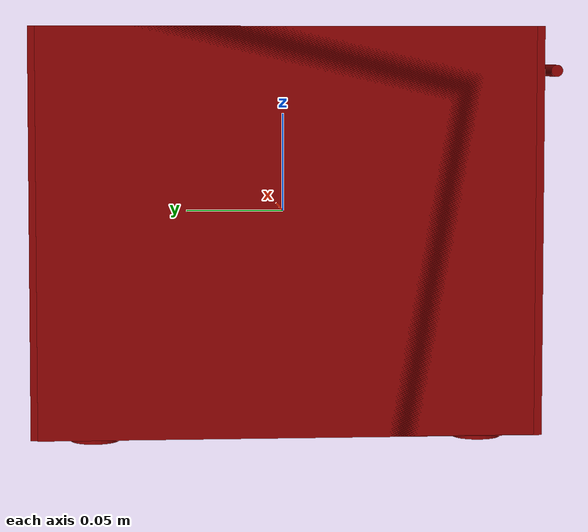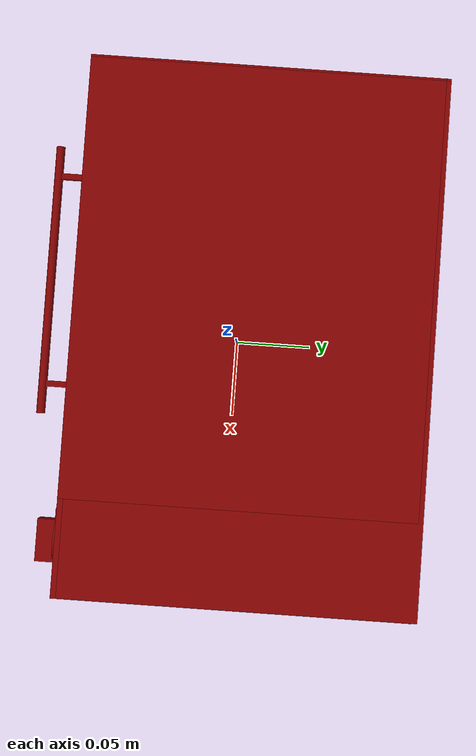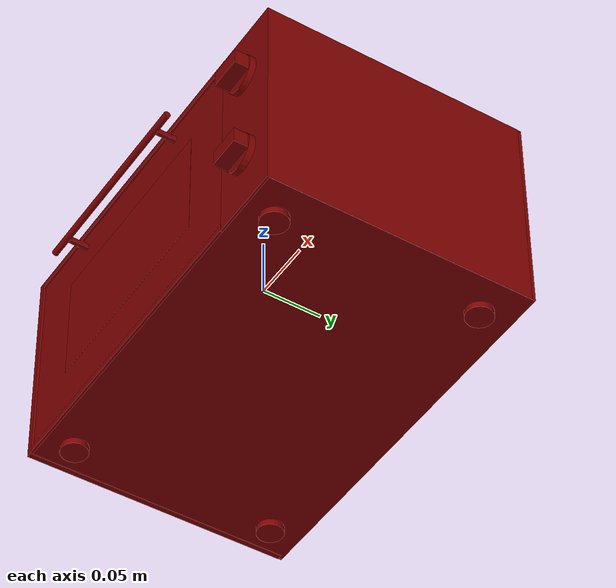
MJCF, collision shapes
<?xml version='1.0' encoding='UTF-8'?>
<mujoco model="model">
  <option timestep="0.002" gravity="0.0 0.0 -9.81"/>
  <compiler angle="radian"/>
  <asset>
    <mesh file="visuals/door.obj" name="door_vis"/>
    <mesh file="visuals/knob_temp.obj" name="knob_temp_vis"/>
    <mesh file="visuals/knob_time.obj" name="knob_time_vis"/>
    <mesh file="visuals/rack0.obj" name="rack0_vis"/>
    <mesh file="visuals/Body001.obj" name="Body001_vis"/>
    <mesh file="visuals/window.obj" name="window_vis"/>
    <texture file="visuals/T_BC001.png" name="Body001_material" type="2d"/>
    <material name="Body001_material" rgba="1 1 1 1.0" texture="Body001_material" shininess="0.4472135901451111" specular="0.5"/>
    <texture file="visuals/T_BC001.png" name="door_material" type="2d"/>
    <material name="door_material" rgba="1 1 1 1.0" texture="door_material" shininess="0.4472135901451111" specular="0.5"/>
    <material name="window_material" rgba="0.04862835258245468 0.04862835258245468 0.04862835258245468 0.699999988079071" shininess="0.4472135901451111" specular="0.3103448502657381"/>
    <texture file="visuals/T_BC001.png" name="knob_temp_material" type="2d"/>
    <material name="knob_temp_material" rgba="1 1 1 1.0" texture="knob_temp_material" shininess="0.4472135901451111" specular="0.3103448502657381"/>
    <texture file="visuals/T_BC001.png" name="knob_time_material" type="2d"/>
    <material name="knob_time_material" rgba="1 1 1 1.0" texture="knob_time_material" shininess="0.4472135901451111" specular="0.3103448502657381"/>
    <texture file="visuals/T_BC001.png" name="rack0_material" type="2d"/>
    <material name="rack0_material" rgba="1 1 1 1.0" texture="rack0_material" shininess="0.4472135901451111" specular="5"/>
  </asset>
  <default>
    <default class="visual">
      <geom conaffinity="0" contype="0" group="1" type="mesh"/>
    </default>
    <default class="collision">
      <geom group="0" rgba="0.5 0 0 0.5"/>
    </default>
    <default class="spawn">
      <geom group="0" rgba="1 1 1 0.5" contype="0" conaffinity="0"/>
      <site group="0" rgba="1 1 1 0.5"/>
    </default>
    <default class="region">
      <geom group="1" conaffinity="0" contype="0" rgba="0 1 0 0"/>
    </default>
  </default>
  <worldbody>
    <body>
      <body name="object">
        <geom mesh="Body001_vis" type="mesh" solimp="0.998 0.998 0.001" solref="0.001 1" friction="0.95 0.3 0.1" class="visual" material="Body001_material"/>
        <geom class="collision" type="box" pos="0.0005172229721210897 0.011733900755643845 0.08691734820604324" size="0.16827885806560516 0.11101721227169037 0.0059806848876178265" quat="1.0 0.0 0.0 0.0"/>
        <geom class="collision" type="box" pos="0.0005172229721210897 0.010909182950854301 -0.08161424100399017" size="0.16827930510044098 0.11184202879667282 0.00614984892308712" quat="1.0 0.0 0.0 0.0"/>
        <geom class="collision" type="box" pos="-0.16227222979068756 0.011733354069292545 0.00258427020162344" size="0.006781758740544319 0.11101708561182022 0.09031245857477188" quat="1.0 0.0 0.0 0.0"/>
        <geom class="collision" type="box" pos="0.0005172229721210897 0.11658301204442978 0.002612464129924774" size="0.16828016936779022 0.006169528234750032 0.08218147605657578" quat="1.0 0.0 0.0 0.0"/>
        <geom class="collision" type="box" pos="0.13432499766349792 0.011733589693903923 0.001870125182904303" size="0.03472871333360672 0.11101776361465454 0.08959874510765076" quat="1.0 0.0 0.0 0.0"/>
        <geom class="collision" type="box" pos="0.10413810610771179 0.011733400635421276 -0.007304775528609753" size="0.00981364119797945 0.11101780086755753 0.00942976027727127" quat="1.0 0.0 0.0 0.0"/>
        <geom class="collision" type="box" pos="0.10373619198799133 0.011733400635421276 -0.030886605381965637" size="0.009176552295684814 0.11101800203323364 0.009429773315787315" quat="1.0 0.0 0.0 0.0"/>
        <geom class="collision" type="box" pos="0.10413810610771179 0.011733400635421276 0.0160503052175045" size="0.009813695214688778 0.11101823300123215 0.009429787285625935" quat="1.0 0.0 0.0 0.0"/>
        <geom class="collision" type="box" pos="0.10413810610771179 0.011733400635421276 0.03679776191711426" size="0.009813722223043442 0.11101843416690826 0.007048959843814373" quat="1.0 0.0 0.0 0.0"/>
        <geom class="collision" type="box" pos="-0.159526064991951 0.01173335313796997 0.03679777681827545" size="0.008752756752073765 0.11101861298084259 0.007048957049846649" quat="1.0 0.0 0.0 0.0"/>
        <geom class="collision" type="box" pos="-0.159526064991951 0.01173335313796997 0.0160503052175045" size="0.00875276979058981 0.1110188215970993 0.009429827332496643" quat="1.0 0.0 0.0 0.0"/>
        <geom class="collision" type="box" pos="-0.15914511680603027 0.01173335313796997 -0.030886605381965637" size="0.008115433156490326 0.11101904511451721 0.009429841302335262" quat="1.0 0.0 0.0 0.0"/>
        <geom class="collision" type="box" pos="-0.159526064991951 0.01173335313796997 -0.007304775528609753" size="0.008752796798944473 0.11101925373077393 0.009429854340851307" quat="1.0 0.0 0.0 0.0"/>
        <geom class="collision" type="cylinder" pos="-0.14149688184261322 -0.0778157040476799 -0.08931057900190353" size="0.011068589985370636 0.0035875211469829082" quat="1.0 0.0 0.0 0.0"/>
        <geom class="collision" type="cylinder" pos="0.13824091851711273 -0.0778157040476799 -0.08931057900190353" size="0.011068589985370636 0.0035875211469829082" quat="1.0 0.0 0.0 0.0"/>
        <geom class="collision" type="cylinder" pos="0.13824091851711273 0.09523653239011765 -0.08931057900190353" size="0.011068589985370636 0.0035875211469829082" quat="1.0 0.0 0.0 0.0"/>
        <geom class="collision" type="cylinder" pos="-0.14149688184261322 0.09523653239011765 -0.08931057900190353" size="0.011068589985370636 0.0035875211469829082" quat="1.0 0.0 0.0 0.0"/>
        <geom class="collision" type="box" pos="0.13830217719078064 0.00851267110556364 0.0025834222324192524" size="0.03075169399380684 0.11128401756286621 0.09031399339437485" quat="1.0 0.0 0.0 0.0"/>
        <geom class="collision" type="box" pos="-0.02991250529885292 0.008459964767098427 0.090357206761837" size="0.13785652816295624 0.11128423362970352 0.0025408766232430935" quat="1.0 0.0 0.0 0.0"/>
        <geom class="collision" type="box" pos="-0.029912535101175308 0.008459964767098427 -0.08453040570020676" size="0.13785678148269653 0.11128444969654083 0.002710123313590884" quat="1.0 0.0 0.0 0.0"/>
        <geom class="collision" type="box" pos="-0.16665823757648468 0.008459950797259808 0.002452221466228366" size="0.0023957903031259775 0.11128467321395874 0.0904453694820404" quat="1.0 0.0 0.0 0.0"/>
        <body name="door">
          <joint axis="1.0 0.0 0.0" pos="-0.028201844543218613 -0.10177598148584366 -0.08069298416376114" limited="true" name="door_joint" range="0.0 1.3707963267948966" type="hinge" damping="1" frictionloss="1" armature=".01" stiffness="-1" springref="1"/>
          <geom mesh="door_vis" type="mesh" solimp="0.998 0.998 0.001" solref="0.001 1" friction="0.95 0.3 0.1" class="visual" material="door_material"/>
          <geom class="collision" type="box" pos="-0.028077220544219017 -0.10103628039360046 0.0035652078222483397" size="0.13400645554065704 0.0006838886765763164 0.08300488442182541" quat="1.0 0.0 0.0 0.0"/>
          <geom class="collision" type="box" pos="0.03781110793352127 -0.10997308790683746 0.07306898385286331" size="0.0018733302131295204 0.008421883918344975 0.0018733302131295204" quat="1.0 0.0 0.0 0.0"/>
          <geom class="collision" type="box" pos="-0.09412231296300888 -0.10997308790683746 0.07306898385286331" size="0.0018733302131295204 0.008421883918344975 0.0018733302131295204" quat="1.0 0.0 0.0 0.0"/>
          <geom class="collision" type="cylinder" pos="-0.028101181611418724 -0.1200672909617424 0.07306898385286331" size="0.0027525743935257196 0.08489397913217545" quat="0.5 0.4999999701976776 0.5 0.5" name="door_handle_main"/>
          <geom class="collision" type="box" pos="-0.028077220544219017 -0.10127787292003632 0.0035652078222483397" size="0.13400645554065704 0.00044229242485016584 0.08300488442182541" quat="1.0 0.0 0.0 0.0" name="door_main"/>
          <body name="window">
            <geom mesh="window_vis" type="mesh" solimp="0.998 0.998 0.001" solref="0.001 1" friction="0.95 0.3 0.1" class="visual" material="window_material"/>
            <geom class="collision" type="box" pos="-0.028270386159420013 -0.10112984478473663 0.00533221336081624" size="0.08991176635026932 0.0007118592620827258 0.04705098271369934" quat="1.0 0.0 0.0 0.0"/>
          </body>
        </body>
        <body name="knob_temp">
          <joint axis="0.0 1.0 0.0" pos="0.13868923485279083 -0.11155329644680023 0.04524857550859451" limited="true" name="knob_temp_joint" range="0.0 4.4505895925855405" type="hinge" damping="0.05" frictionloss="0.75" armature="1"/>
          <geom mesh="knob_temp_vis" type="mesh" solimp="0.998 0.998 0.001" solref="0.001 1" friction="0.95 0.3 0.1" class="visual" material="knob_temp_material"/>
          <geom class="collision" type="cylinder" pos="0.13875286281108856 -0.10590711981058121 0.045270584523677826" size="0.015636349096894264 0.002507224678993225" quat="0.7071068286895752 0.7071067690849304 1.5700924318127872e-16 5.9269340452702814e-24" friction="100 0.5 0.01"/>
          <geom class="collision" type="box" pos="0.1387847512960434 -0.11412039399147034 0.04518483579158783" size="0.013723215088248253 0.005964692682027817 0.006653157994151115" quat="1.0 0.0 0.0 0.0" name="knob_temp_main" friction="100 0.5 0.01"/>
        </body>
        <body name="knob_time">
          <joint axis="0.0 1.0 0.0" pos="0.13868923485279083 -0.11155329644680023 -0.03921511769294739" limited="true" name="knob_time_joint" range="0.0 4.71238898038469" type="hinge" damping="0.05" frictionloss="0.75" armature="1"/>
          <geom mesh="knob_time_vis" type="mesh" solimp="0.998 0.998 0.001" solref="0.001 1" friction="0.95 0.3 0.1" class="visual" material="knob_time_material"/>
          <geom class="collision" type="cylinder" pos="0.13875286281108856 -0.10590711981058121 -0.039193108677864075" size="0.015636349096894264 0.002507224678993225" quat="0.7071068286895752 0.7071067690849304 1.5700924318127872e-16 5.9269340452702814e-24" friction="100 0.5 0.01"/>
          <geom class="collision" type="box" pos="0.1387847512960434 -0.11412039399147034 -0.03927885740995407" size="0.013723215088248253 0.005964692682027817 0.006653157994151115" quat="1.0 0.0 0.0 0.0" name="knob_time_main" friction="100 0.5 0.01"/>
        </body>
        <body name="rack0">
          <geom class="region" name="reg_rack0" type="box" pos="-0.027972761541604996 -0.0015356764197349548 0.04186192760244012" size="0.12146563252806664 0.07999505645036697 0.03670016613230109"/>
          <joint axis="0.0 -1.0 0.0" pos="-0.02817477658390999 -0.0008770496933721006 0.004313232377171516" limited="true" name="rack0_joint" range="0.0 0.20" type="slide" damping="1" frictionloss="1" armature=".01" stiffness="0.05"/>
          <geom mesh="rack0_vis" type="mesh" solimp="0.998 0.998 0.001" solref="0.001 1" friction="0.95 0.3 0.1" class="visual" material="rack0_material"/>
          <geom class="collision" type="box" pos="-0.028249427676200867 -0.0006852085352875292 0.004309872165322304" size="0.12573044002056122 0.08438935875892639 0.0015004761517047882" quat="1.0 0.0 0.0 0.0"/>
        </body>
        <geom class="region" name="reg_main" type="box" pos="3.725290298461914e-09 0.009753149002790451 0.0" size="0.17005400156974793 0.11399946904182434 0.09389811551570892"/>
      </body>
    </body>
  </worldbody>
  <actuator>
    <motor name="door_joint_actuator" joint="door_joint" gear="10"/>
    <motor name="knob_temp_joint_actuator" joint="knob_temp_joint" gear="10"/>
    <motor name="knob_time_joint_actuator" joint="knob_time_joint" gear="10"/>
    <motor name="rack0_joint_actuator" joint="rack0_joint" gear="50"/>
  </actuator>
</mujoco>
